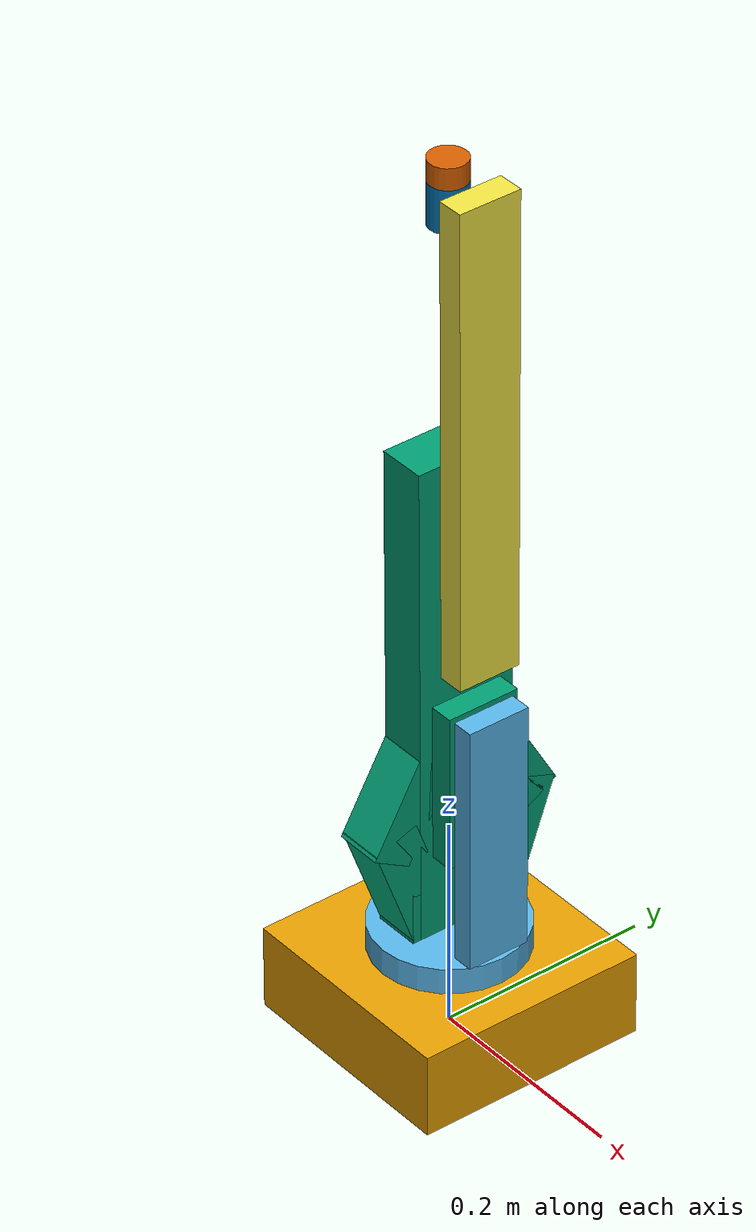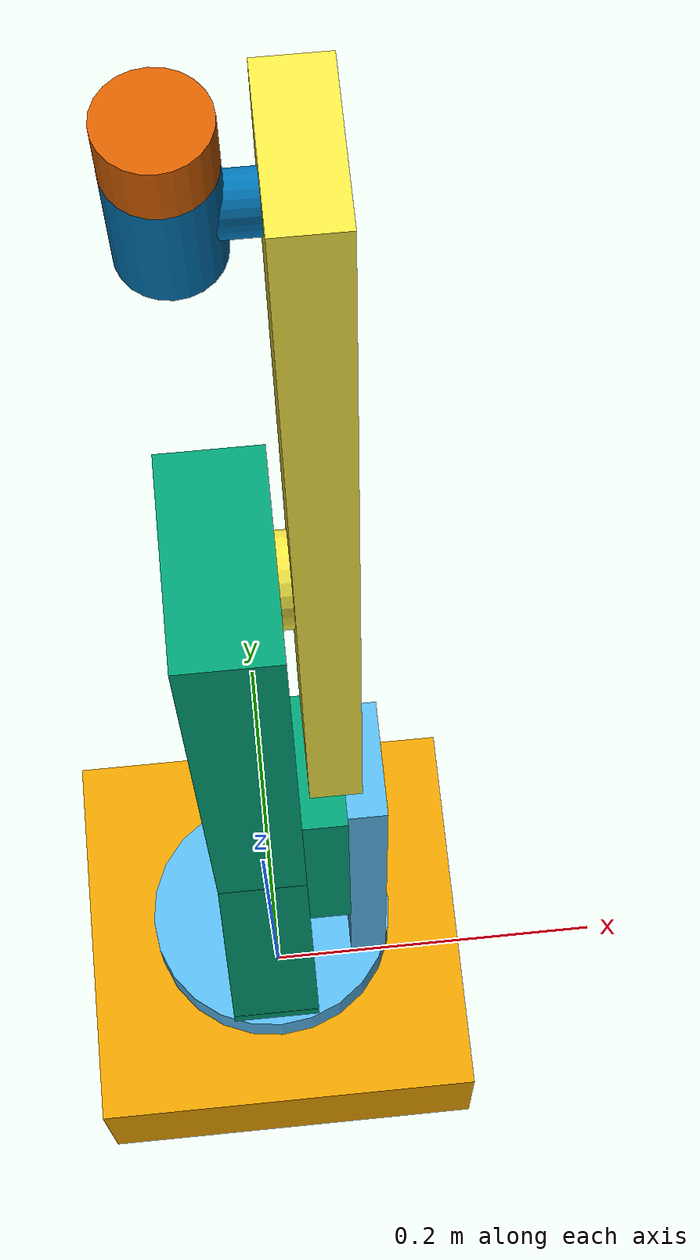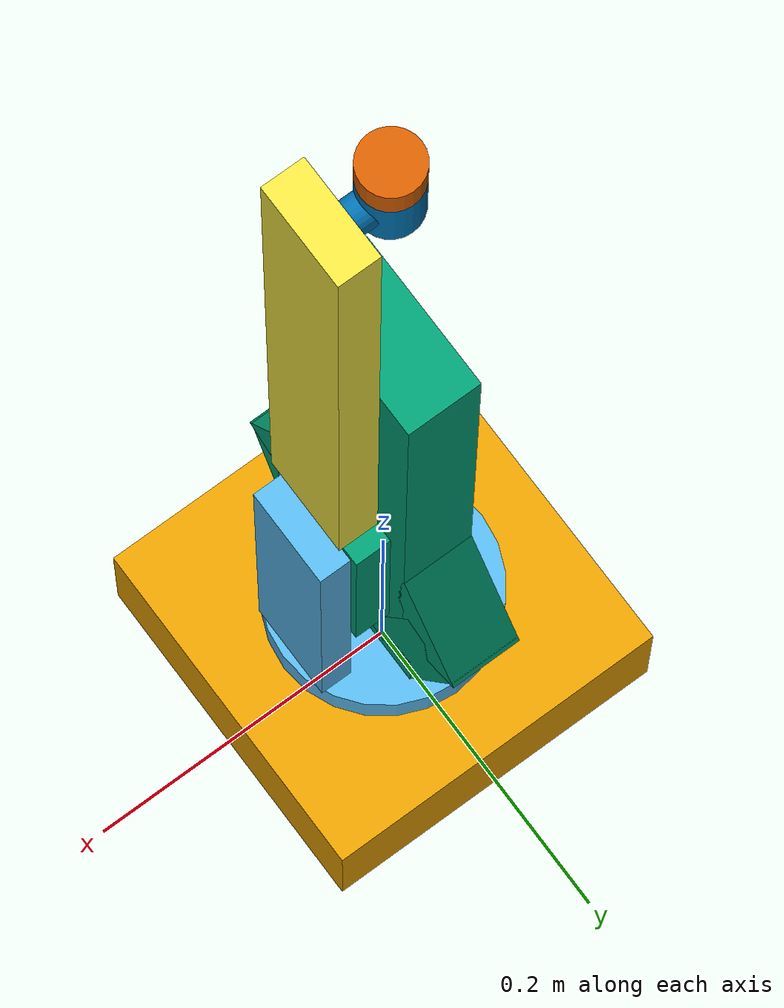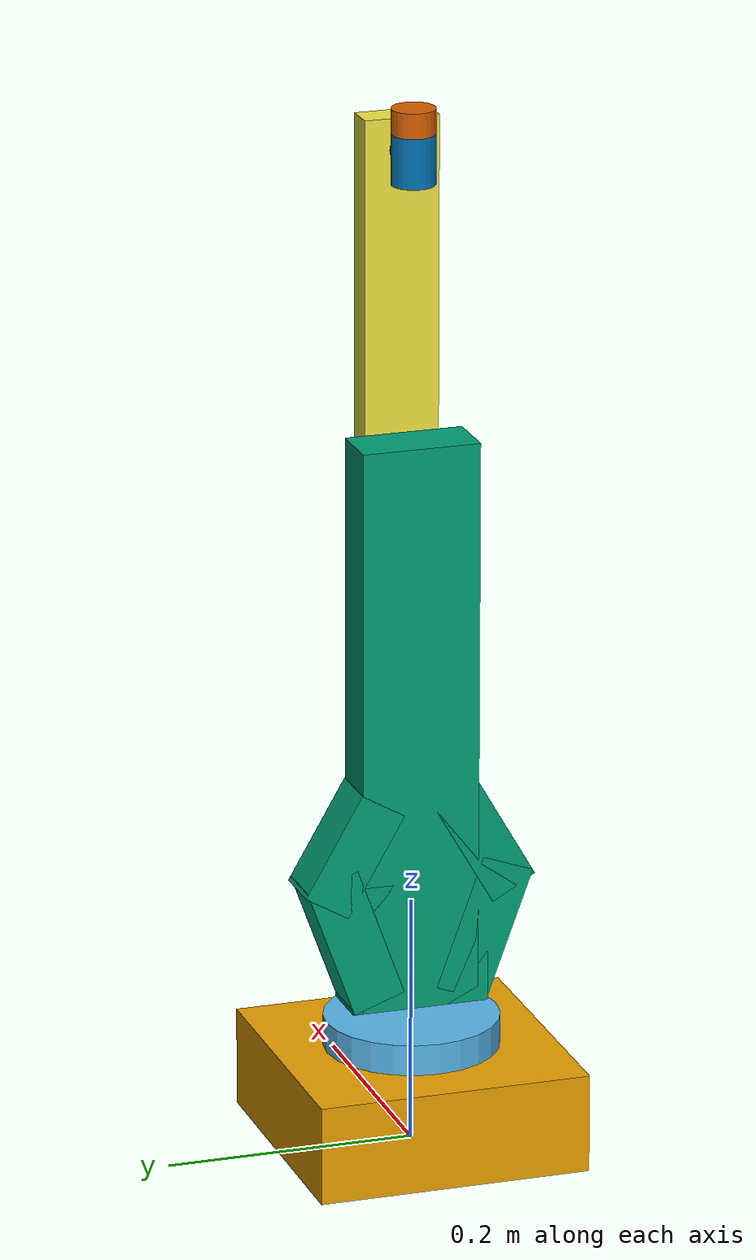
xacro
<?xml version="1.0"?>
<robot xmlns:xacro="http://www.ros.org/wiki/xacro" name="r12">
    <xacro:arg name="initial_positions_file" default="initial_positions.yaml" />

    <!-- Import r12 urdf file -->
    <xacro:include filename="$(find r12_description)/urdf/r12.urdf" />

    <!-- Import control_xacro -->
    <xacro:include filename="r12.ros2_control.xacro" />

    <xacro:r12_ros2_control name="FakeSystem" initial_positions_file="$(arg initial_positions_file)"/>

</robot>

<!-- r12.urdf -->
<robot name="r12" xmlns:xacro="http://ros.org/wiki/xacro">
    <link name="base_link">
        <visual>
            <origin rpy="0 0 0" xyz="0 0 0.04"/>
            <geometry>
                <box size="0.22 0.22 0.08"/>
            </geometry>
        </visual>
        <collision>
            <origin rpy="0 0 0" xyz="0 0 0.04"/>
            <geometry>
                <box size="0.22 0.22 0.08"/>
            </geometry>
        </collision>
    </link>

    <joint name="waist_joint" type="revolute">
        <parent link="base_link"/>
        <child link="waist_shoulder_link"/>
        <origin xyz="0 0 0.0925" rpy="0 0 0"/>
        <limit lower="-3.14159" upper="3.14159" effort="0.1" velocity="0.005"/>
        <axis xyz="0 0 1"/>
    </joint>

    <link name="waist_shoulder_link">
        <visual>
            <origin rpy="0 0 0" xyz="0 0 0"/>
            <geometry>
                <cylinder radius="0.07" length="0.025"/>
            </geometry>
        </visual>
	<visual>
            <origin rpy="0 0 0" xyz="0.055 0 0.1315"/>
            <geometry>
                <box size="0.02 0.06 0.238"/>
            </geometry>
        </visual>
        <collision>
            <origin rpy="0 0 0" xyz="0 0 0"/>
            <geometry>
                <cylinder radius="0.07" length="0.025"/>
            </geometry>
        </collision>
	<collision>
            <origin rpy="0 0 0" xyz="0.055 0 0.1315"/>
            <geometry>
                <box size="0.02 0.06 0.238"/>
            </geometry>
        </collision>
    </link>

    <joint name="shoulder_joint" type="revolute">
        <parent link="waist_shoulder_link"/>
        <child link="shoulder_elbow_link"/>
        <origin xyz="0 0 0.2105" rpy="0 0 0"/>
        <limit lower="-3.14159" upper="3.14159" effort="0.1" velocity="0.005"/>
        <axis xyz="1 0 0"/>
    </joint>

    <link name="shoulder_elbow_link">
        <visual>
            <origin rpy="0 0 0" xyz="0 0 0.045"/>
            <geometry>
                <box size="0.045 0.095 0.460"/>
            </geometry>
        </visual>
	<visual>
            <origin rpy="0 0 0" xyz="0 0 -0.1325"/>
            <geometry>
                <box size="0.045 0.11094 0.105"/>
            </geometry>
        </visual>
	<visual>
            <origin rpy="0 0 0" xyz="0.03375 0 -0.03"/>
            <geometry>
                <box size="0.0225 0.07 0.15"/>
            </geometry>
        </visual>
	<visual>
            <origin rpy="-1.0472 0 0" xyz="0 0.053659 -0.053333"/>
            <geometry>
                <box size="0.045 0.092376 0.04"/>
            </geometry>
        </visual>
	<visual>
            <origin rpy="-0.349 0 0" xyz="0 0.053 -0.12506"/>
            <geometry>
                <box size="0.045 0.043403 0.111739"/>
            </geometry>
        </visual>
	<visual>
            <origin rpy="1.0472 0 0" xyz="0 -0.053659 -0.053333"/>
            <geometry>
                <box size="0.045 0.092376 0.04"/>
            </geometry>
        </visual>
	<visual>
            <origin rpy="0.349 0 0" xyz="0 -0.053 -0.12506"/>
            <geometry>
                <box size="0.045 0.043403 0.111739"/>
            </geometry>
        </visual>
        <collision>
            <origin rpy="0 0 0" xyz="0 0 0.045"/>
            <geometry>
                <box size="0.045 0.095 0.460"/>
            </geometry>
        </collision>
	<collision>
            <origin rpy="0 0 0" xyz="0 0 -0.1325"/>
            <geometry>
                <box size="0.045 0.11094 0.105"/>
            </geometry>
        </collision>
	<collision>
            <origin rpy="-1.0472 0 0" xyz="0 0.053659 -0.053333"/>
            <geometry>
                <box size="0.045 0.092376 0.04"/>
            </geometry>
        </collision>
	<collision>
            <origin rpy="-0.349 0 0" xyz="0 0.053 -0.12506"/>
            <geometry>
                <box size="0.045 0.043403 0.111739"/>
            </geometry>
        </collision>
	<collision>
            <origin rpy="1.0472 0 0" xyz="0 -0.053659 -0.053333"/>
            <geometry>
                <box size="0.045 0.092376 0.04"/>
            </geometry>
        </collision>
	<collision>
            <origin rpy="0.349 0 0" xyz="0 -0.053 -0.12506"/>
            <geometry>
                <box size="0.045 0.043403 0.111739"/>
            </geometry>
        </collision>
	<collision>
            <origin rpy="0 0 0" xyz="0.03375 0 -0.03"/>
            <geometry>
                <box size="0.0225 0.07 0.15"/>
            </geometry>
        </collision>
    </link>

    <joint name="elbow_joint" type="revolute">
        <parent link="shoulder_elbow_link"/>
        <child link="elbow_hand_link"/>
        <origin xyz="0.04 0 0.25" rpy="0 0 0"/>
        <limit lower="-2.26" upper="2.26" effort="0.1" velocity="0.005"/>
        <axis xyz="1 0 0"/>
    </joint>

    <link name="elbow_hand_link">
        <visual>
            <origin rpy="0 0 0" xyz="0 0 0.05"/>
            <geometry>
                <box size="0.025 0.06 0.45"/>
            </geometry>
        </visual>
        <visual>
            <origin rpy="0 -1.5708 0" xyz="-0.015 0 0"/>
            <geometry>
                <cylinder radius="0.02" length="0.005"/>
            </geometry>
        </visual>
        <collision>
            <origin rpy="0 0 0" xyz="0 0 0.05"/>
            <geometry>
                <box size="0.025 0.06 0.45"/>
            </geometry>
        </collision>
	<collision>
            <origin rpy="0 -1.5708 0" xyz="-0.015 0 0"/>
            <geometry>
                <cylinder radius="0.02" length="0.005"/>
            </geometry>
        </collision>
    </link>

    <joint name="hand_joint" type="revolute">
        <parent link="elbow_hand_link"/>
        <child link="hand_wrist_link"/>
        <origin xyz="-0.04 0 0.25" rpy="0 0 0"/>
        <limit lower="-2.09" upper="2.09" effort="0.1" velocity="0.005"/>
        <axis xyz="1 0 0"/>
    </joint>

    <link name="hand_wrist_link">
        <visual>
            <origin rpy="0 0 0" xyz="0 0 0"/>
            <geometry>
                <cylinder radius="0.0175" length="0.04"/>
            </geometry>
        </visual>
	<visual>
            <origin rpy="0 -1.5708 0" xyz="0.01375 0 0"/>
            <geometry>
                <cylinder radius="0.01" length="0.0275"/>
            </geometry>
        </visual>
        <collision>
            <origin rpy="0 0 0" xyz="0 0 0"/>
            <geometry>
                <cylinder radius="0.0175" length="0.04"/>
            </geometry>
        </collision>
	<collision>
            <origin rpy="0 -1.5708 0" xyz="0.01375 0 0"/>
            <geometry>
                <cylinder radius="0.01" length="0.0275"/>
            </geometry>
        </collision>
    </link>

    <joint name="wrist_joint" type="revolute">
        <parent link="hand_wrist_link"/>
        <child link="wrist_tool_link"/>
        <origin xyz="0 0 0.02" rpy="0 0 0"/>
        <limit lower="-3.14159" upper="3.14159" effort="0.1" velocity="0.005"/>
        <axis xyz="0 0 1"/>
    </joint>

    <link name="wrist_tool_link">
        <visual>
            <origin rpy="0 0 0" xyz="0 0 0.01"/>
            <geometry>
                <cylinder radius="0.0175" length="0.02"/>
            </geometry>
        </visual>
        <collision>
            <origin rpy="0 0 0" xyz="0 0 0.01"/>
            <geometry>
                <cylinder radius="0.0175" length="0.02"/>
            </geometry>
        </collision>
    </link>

</robot>
